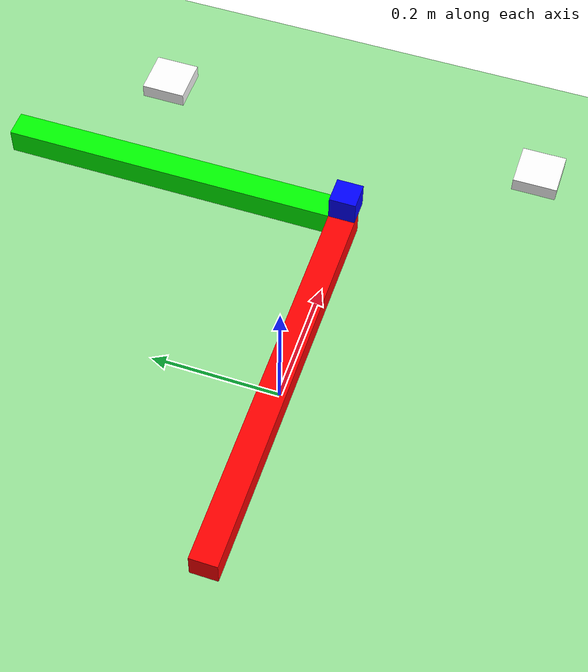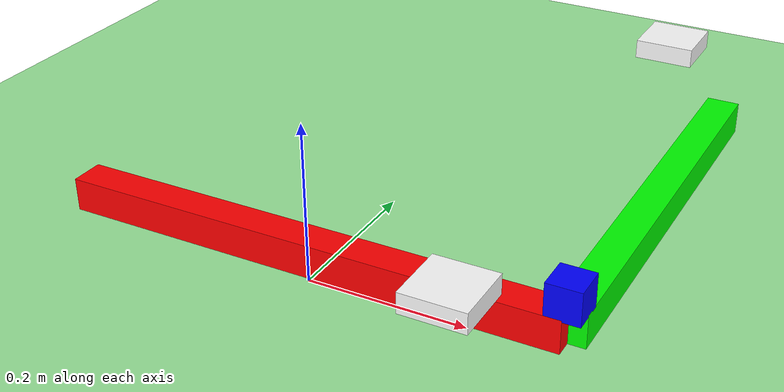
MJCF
<mujoco model="three_beams">
    <option timestep="0.01" gravity="0 0 -9.81"/>

    <!-- Define default material and visual properties -->
    <visual>
        <global offwidth="800" offheight="600"/>
    </visual>

    <asset>
        <!-- Define beam material -->
        <texture name="beam_tex" type="cube" builtin="flat" width="256" height="256" rgb1="0.8 0.3 0.3" rgb2="0.8 0.8 0.8"/>
        <material name="beam_mat" texture="beam_tex" reflectance="0.3"/>
    </asset>

    <worldbody>
        <!-- Add ground plane -->
        <geom name="ground" type="plane" size="10 10 0.1" rgba="0.6 0.9 0.6 1"/>

        <!-- Beam 1 quaternion order is [w x y z] -->
        <body name="beam1" pos="0 0 0.04" quat="1 0 0 0">
            <freejoint />
            <geom name="l_beam_1" type="box" size="0.316 0.021 0.021" rgba="1 0 0 1" material="beam_mat"/>
        </body>

        <!-- Beam 2 -->
        <body name="beam2" pos="0.316 0.277 0.04" quat="0.707 0 0 0.707">
            <freejoint />
            <geom name="l_beam_2" type="box" size="0.277 0.021 0.021" rgba="0 1 0 1" material="beam_mat"/>
        </body>

        <!-- Pin -->
        <body name="pinA" pos="0.316 0.0 0.08" quat="0.707 0 0 0.707">
            <freejoint />
            <geom name="l_pin_A" type="box" size="0.021 0.021 0.021" rgba="0 0 1 1" material="beam_mat"/>
        </body>

        <!-- Hand -->
        <body name="left_hand" pos="0.316 0.277 0.25" quat="1 0 0 0">
            <freejoint />
            <geom name="robot_left_hand" type="box" size="0.031 0.031 0.01" rgba="1 1 1 1" material="beam_mat"/>
        </body>

        <!-- Hand -->
        <body name="right_hand" pos="0.316 -0.277 0.25" quat="1 0 0 0">
            <freejoint />
            <geom name="robot_right_hand" type="box" size="0.031 0.031 0.01" rgba="1 1 1 1" material="beam_mat"/>
        </body>

    </worldbody>
</mujoco>
